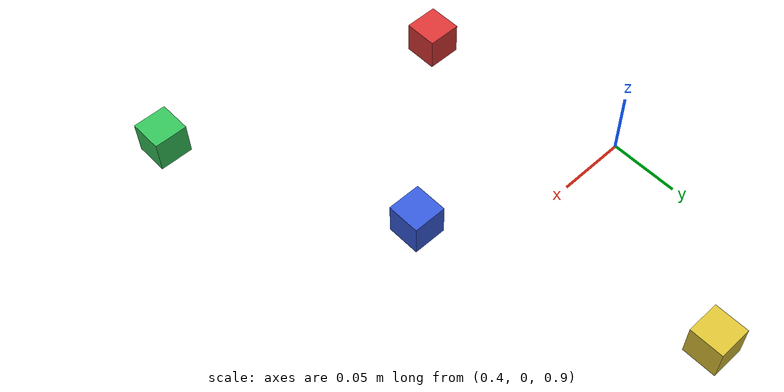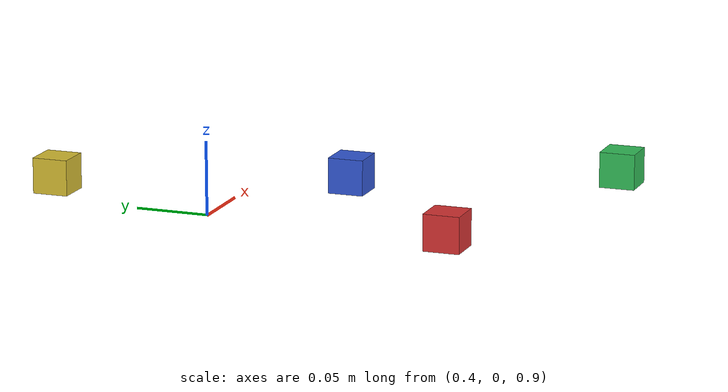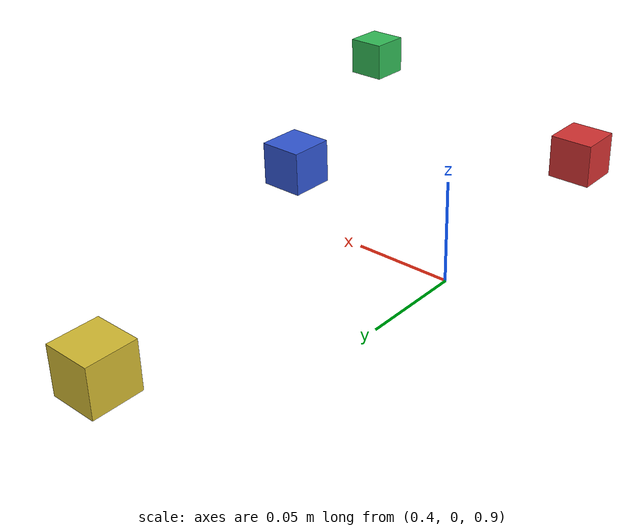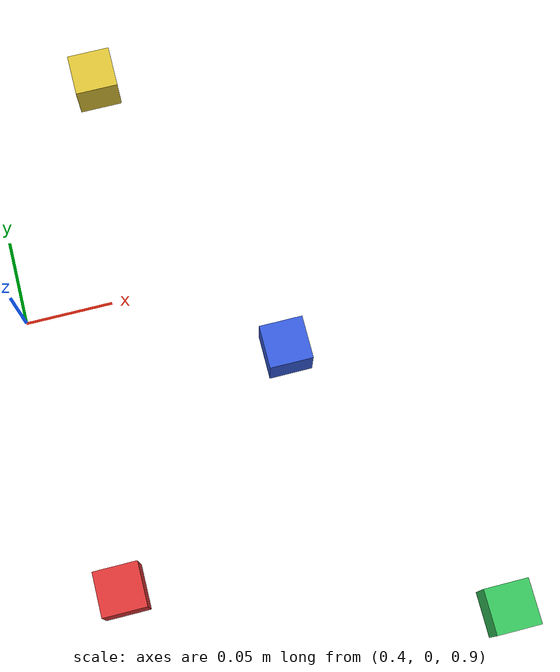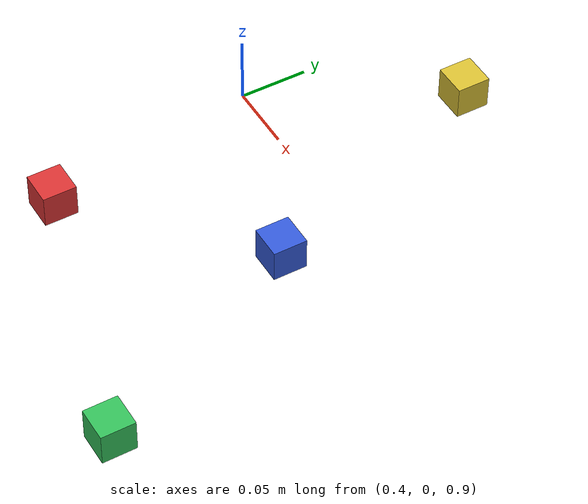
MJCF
<mujoco model="obj_blocks">

    <worldbody>
        <body name="body_obj_block_1" pos="0.42 -0.16 0.90" euler="0 0 0">
            <joint type="free" damping="0" armature="0" />
            <geom type="box" size="0.0125 0.0125 0.0125" rgba="0.85 0.2 0.2 1" contype="1" conaffinity="1" condim="4" friction="1.2 0.01 0.002" solref="0.01 1" solimp="0.9 0.97 0.01" margin="0" gap="0" />
            <inertial pos="0 0 0" mass="0.03" diaginertia="0.0000031 0.0000031 0.0000031" />
        </body>

        <body name="body_obj_block_2" pos="0.54 -0.05 0.90" euler="0 0 0">
            <joint type="free" damping="0" armature="0" />
            <geom type="box" size="0.0125 0.0125 0.0125" rgba="0.2 0.35 0.85 1" contype="1" conaffinity="1" condim="4" friction="1.2 0.01 0.002" solref="0.01 1" solimp="0.9 0.97 0.01" margin="0" gap="0" />
            <inertial pos="0 0 0" mass="0.025" diaginertia="0.0000026 0.0000026 0.0000026" />
        </body>

        <body name="body_obj_block_3" pos="0.62 -0.22 0.90" euler="0 0 0">
            <joint type="free" damping="0" armature="0" />
            <geom type="box" size="0.0125 0.0125 0.0125" rgba="0.2 0.75 0.35 1" contype="1" conaffinity="1" condim="4" friction="1.2 0.01 0.002" solref="0.01 1" solimp="0.9 0.97 0.01" margin="0" gap="0" />
            <inertial pos="0 0 0" mass="0.02" diaginertia="0.0000021 0.0000021 0.0000021" />
        </body>

        <body name="body_obj_block_4" pos="0.47 0.14 0.90" euler="0 0 0">
            <joint type="free" damping="0" armature="0" />
            <geom type="box" size="0.0125 0.0125 0.0125" rgba="0.85 0.75 0.2 1" contype="1" conaffinity="1" condim="4" friction="1.2 0.01 0.002" solref="0.01 1" solimp="0.9 0.97 0.01" margin="0" gap="0" />
            <inertial pos="0 0 0" mass="0.018" diaginertia="0.0000019 0.0000019 0.0000019" />
        </body>
    </worldbody>
</mujoco>
